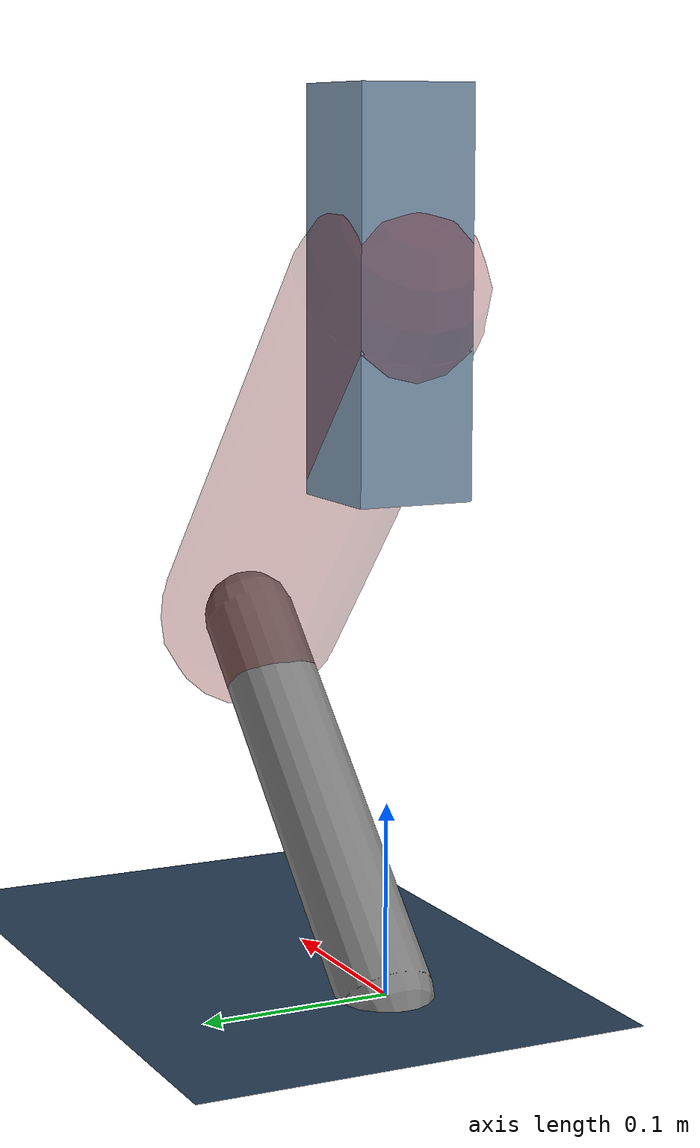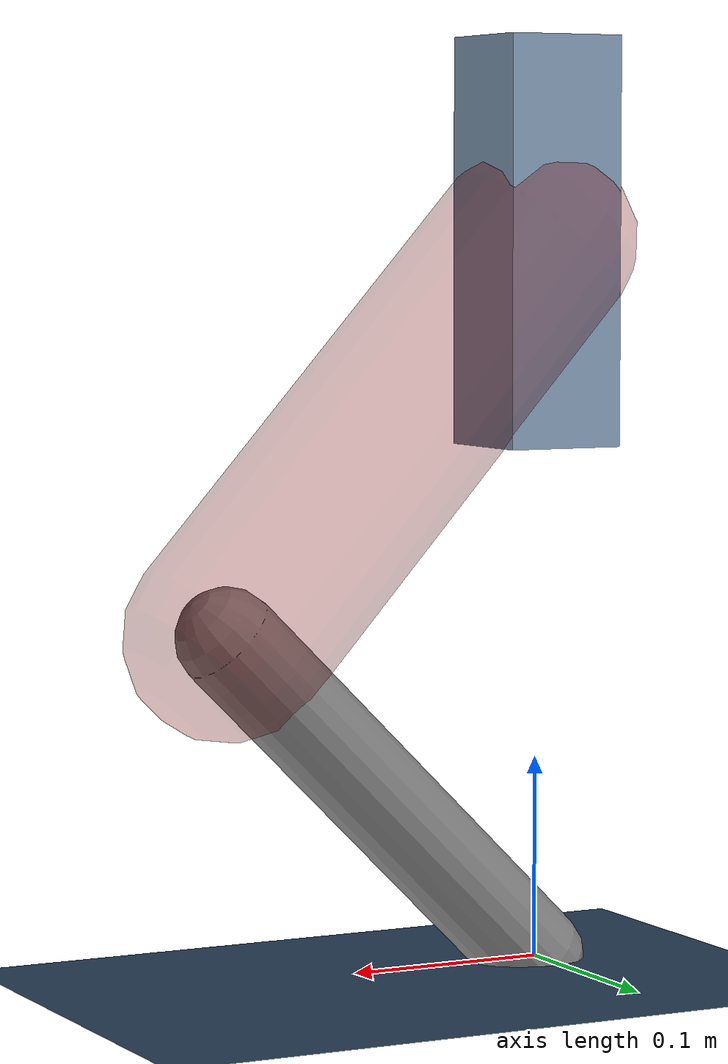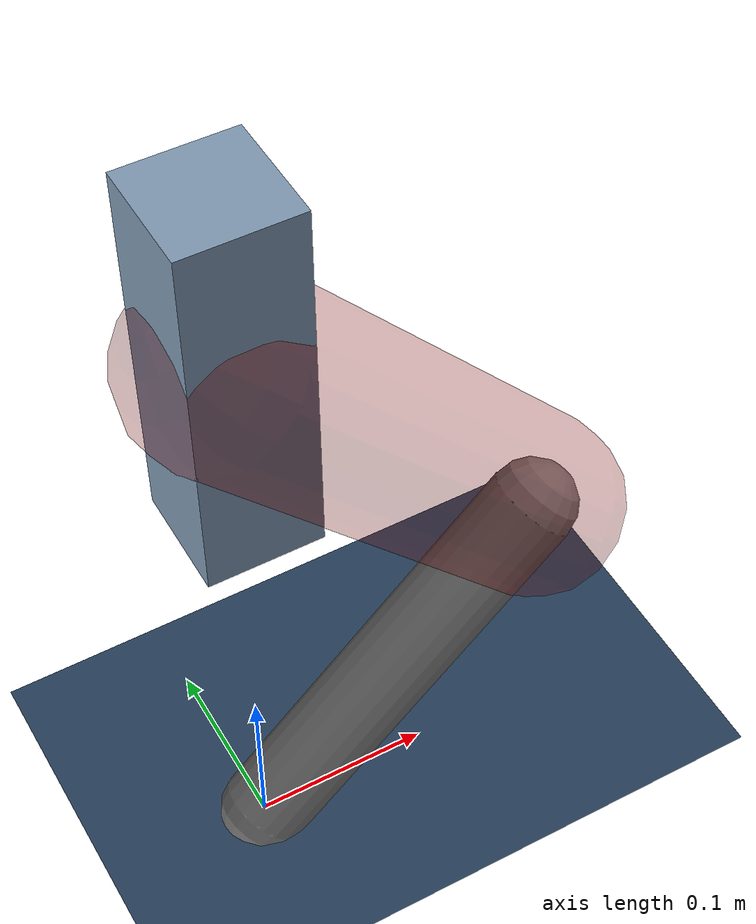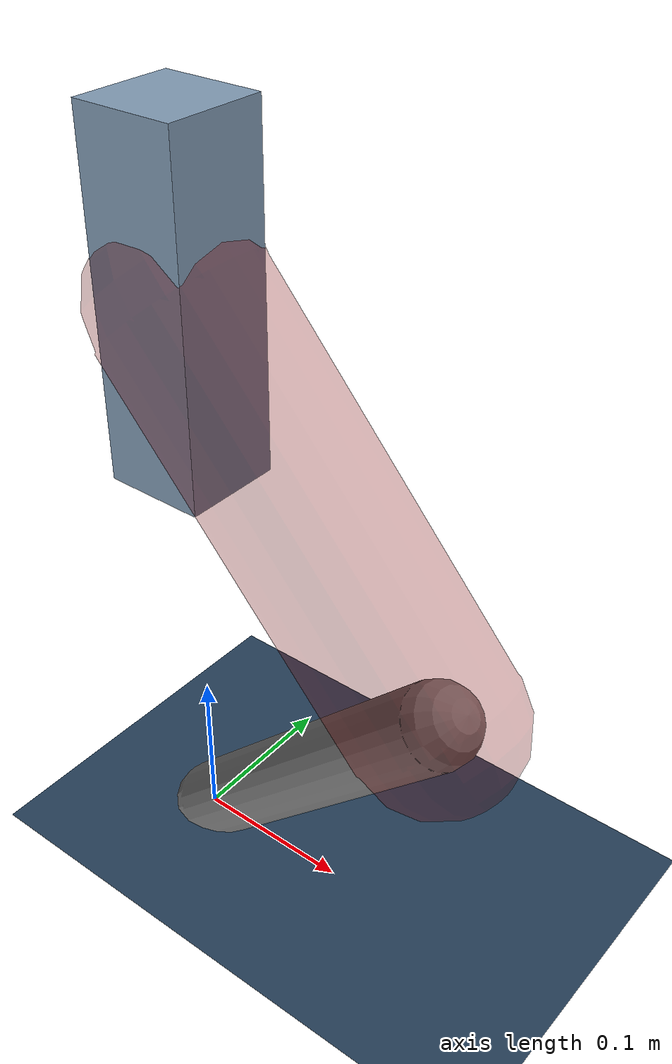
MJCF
<mujoco model="Hopper2D">
	<compiler inertiafromgeom="true" angle="radian" />
	<option timestep="0.001" integrator="implicit" cone="elliptic" solver="Newton" tolerance="1e-10" />

	<default>
		<geom contype="1" conaffinity="1" condim="3" friction="2 0.005 0.0001" solref="0.005 1" />
		<joint limited="true" damping="0.1" />
	</default>

	<asset>
		<texture name="skybox" type="skybox" builtin="gradient" rgb1=".4 .6 .8" rgb2="0 0 0" width="800" height="800" />
		<texture name="grid" type="2d" builtin="checker" rgb1=".1 .2 .3" rgb2=".2 .3 .4" width="300" height="300" mark="edge" markrgb=".2 .3 .4" />
		<material name="ground" texture="grid" texrepeat="1 1" texuniform="true" reflectance="0.1" />
		<material name="leg" rgba="0.5 0.6 0.7 1" />
	</asset>

	<worldbody>

		<geom name="floor" type="plane" size="5 5 0.25" material="ground" />

		<light directional="false" diffuse="0.8 0.8 0.8" specular="0.3 0.3 0.3" pos="0 0 2" dir="0 0 -1" />
		<light mode="targetbodycom" target="base" directional="false" diffuse="0.8 0.8 0.8" specular="0.3 0.3 0.3" pos="0 0 2" dir="0 0 -1" />

		<camera name="fixed" pos="0 -2 1" xyaxes="1 0 0 0 0 1" />
		<camera name="tracking" mode="trackcom" pos="0 -3 1" />

		<body name="root" pos="0 0 0.3549302154436796">
			<joint name="slide_x" type="slide" axis="1 0 0" range="-100 100" />
			<joint name="slide_z" type="slide" axis="0 0 1" range="0 10" />

			<body name="base" pos="0 0 0">
				<geom name="torso" type="box" size="0.03 0.03 0.1" mass="3.0549999999999997" material="leg" />

				<body name="link1" pos="0 0 0" euler="0 0.8401536043490194 0">
					<joint type="hinge" axis="0 -1 0" pos="0 0 0" name="hinge1" limited="true" range="-3.14 3.14" stiffness="0" damping="0.1" />
					<geom name="thigh" type="capsule" fromto="0 0 0 0.2515499233208744 0 0" size="0.05" rgba="0.5 0 0 0.3" mass="0.8604298006342734" />

					<body name="link2" pos="0.2515499233208744 0 0" euler="0 1.516881342839783 0">
						<joint type="hinge" axis="0 -1 0" pos="0 0 0" name="hinge2" limited="true" range="-3.14 3.14" stiffness="0" damping="0.1" />
						<geom name="shank" type="capsule" fromto="0 0 0 0.2372068005970817 0 0" size="0.025" mass="0.4319654404776654" />

					</body>
				</body>
			</body>
		</body>
	</worldbody>

	<actuator>
		<motor name="torque1" joint="hinge1" ctrlrange="-129.02042702695297 129.02042702695297" ctrllimited="true" gear="1" />
		<motor name="torque2" joint="hinge2" ctrlrange="-77.63710041072551 77.63710041072551" ctrllimited="true" gear="1" />
	</actuator>
</mujoco>
